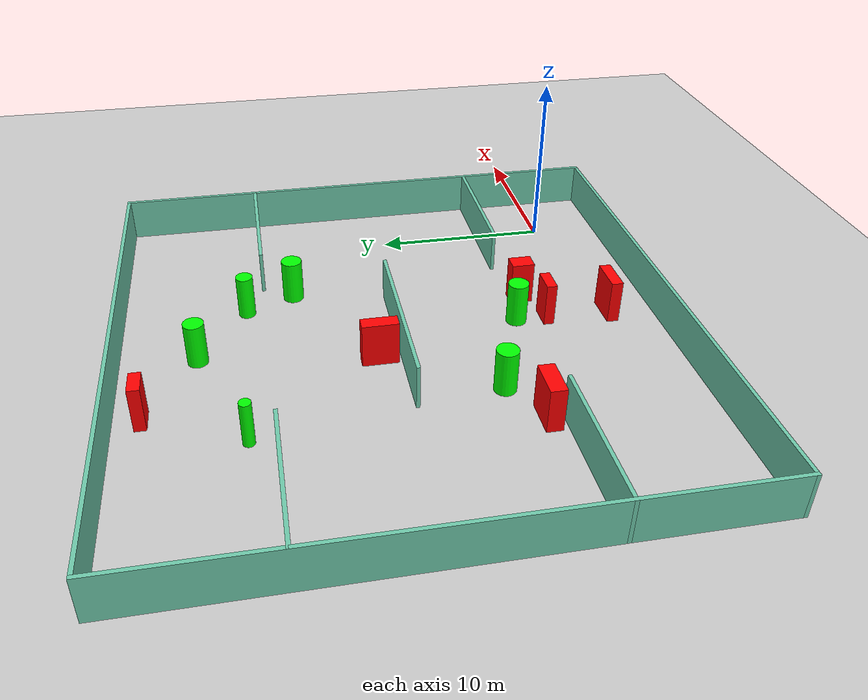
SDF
<sdf version="1.7">
 <world name="default">
  <light name="sun" type="directional">
   <pose>0 0 10 0 -0 0</pose>
   <diffuse>0.8 0.8 0.8 1</diffuse>
   <specular>0.2 0.2 0.2 1</specular>
   <attenuation>
    <range>1000</range>
    <constant>0.9</constant>
    <linear>0.01</linear>
    <quadratic>0.001</quadratic>
   </attenuation>
   <direction>-0.5 0.1 -0.9</direction>
   <spot><inner_angle>0</inner_angle><outer_angle>0</outer_angle><falloff>0</falloff></spot>
  </light>
  <model name="ground_plane">
   <static>1</static>
   <link name="link">
    <collision name="collision">
     <geometry><plane><normal>0 0 1</normal><size>100 100</size></plane></geometry>
     <surface>
      <contact><collide_bitmask>65535</collide_bitmask></contact>
      <friction><ode><mu>100</mu><mu2>50</mu2></ode></friction>
     </surface>
    </collision>
    <visual name="visual">
     <cast_shadows>0</cast_shadows>
     <geometry><plane><normal>0 0 1</normal><size>100 100</size></plane></geometry>
     <material>
      <script><uri>file://media/materials/scripts/gazebo.material</uri><name>Gazebo/Grey</name></script>
     </material>
    </visual>
   </link>
  </model>
  <gravity>0 0 -9.8</gravity>
  <magnetic_field>6e-06 2.3e-05 -4.2e-05</magnetic_field>
  <atmosphere type="adiabatic"/>
  <physics type="ode">
   <max_step_size>0.001</max_step_size>
   <real_time_factor>1</real_time_factor>
   <real_time_update_rate>1000</real_time_update_rate>
  </physics>
  <scene><ambient>0.4 0.4 0.4 1</ambient><background>0.7 0.7 0.7 1</background><shadows>1</shadows></scene>
  <spherical_coordinates>
   <surface_model>EARTH_WGS84</surface_model>
   <latitude_deg>0</latitude_deg>
   <longitude_deg>0</longitude_deg>
   <elevation>0</elevation>
   <heading_deg>0</heading_deg>
  </spherical_coordinates>
  <model name="my_base_walls">
   <link name="Wall_10">
    <collision name="Wall_10_Collision">
     <geometry><box><size>8.2 0.2 2.5</size></box></geometry>
     <pose>0 0 1.25 0 -0 0</pose>
    </collision>
    <visual name="Wall_10_Visual">
     <pose>0 0 1.25 0 -0 0</pose>
     <geometry><box><size>8.2 0.2 2.5</size></box></geometry>
     <material>
      <script><uri>file://media/materials/scripts/gazebo.material</uri><name>Gazebo/Grey</name></script>
      <ambient>0.435294 0.796078 0.67451 1</ambient>
     </material>
     <meta><layer>0</layer></meta>
    </visual>
    <pose>-11 -7 0 0 -0 0</pose>
   </link>
   <link name="Wall_12">
    <collision name="Wall_12_Collision">
     <geometry><box><size>8.2 0.2 2.5</size></box></geometry>
     <pose>0 0 1.25 0 -0 0</pose>
    </collision>
    <visual name="Wall_12_Visual">
     <pose>0 0 1.25 0 -0 0</pose>
     <geometry><box><size>8.2 0.2 2.5</size></box></geometry>
     <material>
      <script><uri>file://media/materials/scripts/gazebo.material</uri><name>Gazebo/Grey</name></script>
      <ambient>0.435294 0.796078 0.67451 1</ambient>
     </material>
     <meta><layer>0</layer></meta>
    </visual>
    <pose>-11 7 0 0 -0 0</pose>
   </link>
   <link name="Wall_14">
    <collision name="Wall_14_Collision">
     <geometry><box><size>8.2 0.2 2.5</size></box></geometry>
     <pose>0 0 1.25 0 -0 0</pose>
    </collision>
    <visual name="Wall_14_Visual">
     <pose>0 0 1.25 0 -0 0</pose>
     <geometry><box><size>8.2 0.2 2.5</size></box></geometry>
     <material>
      <script><uri>file://media/materials/scripts/gazebo.material</uri><name>Gazebo/Grey</name></script>
      <ambient>0.435294 0.796078 0.67451 1</ambient>
     </material>
     <meta><layer>0</layer></meta>
    </visual>
    <pose>11 7 0 0 -0 3.14159</pose>
   </link>
   <link name="Wall_16">
    <collision name="Wall_16_Collision">
     <geometry><box><size>10.2 0.2 2.5</size></box></geometry>
     <pose>0 0 1.25 0 -0 0</pose>
    </collision>
    <visual name="Wall_16_Visual">
     <pose>0 0 1.25 0 -0 0</pose>
     <geometry><box><size>10.2 0.2 2.5</size></box></geometry>
     <material>
      <script><uri>file://media/materials/scripts/gazebo.material</uri><name>Gazebo/Grey</name></script>
      <ambient>0.435294 0.796078 0.67451 1</ambient>
     </material>
     <meta><layer>0</layer></meta>
    </visual>
    <pose>0 0 0 0 -0 3.14159</pose>
   </link>
   <link name="Wall_2">
    <collision name="Wall_2_Collision">
     <geometry><box><size>30.2 0.2 2.5</size></box></geometry>
     <pose>0 0 1.25 0 -0 0</pose>
    </collision>
    <visual name="Wall_2_Visual">
     <pose>0 0 1.25 0 -0 0</pose>
     <geometry><box><size>30.2 0.2 2.5</size></box></geometry>
     <material>
      <script><uri>file://media/materials/scripts/gazebo.material</uri><name>Gazebo/Grey</name></script>
      <ambient>0.435294 0.796078 0.67451 1</ambient>
     </material>
     <meta><layer>0</layer></meta>
    </visual>
    <pose>0 -15 0 0 -0 3.14159</pose>
   </link>
   <link name="Wall_3">
    <collision name="Wall_3_Collision">
     <geometry><box><size>30.2 0.2 2.5</size></box></geometry>
     <pose>0 0 1.25 0 -0 0</pose>
    </collision>
    <visual name="Wall_3_Visual">
     <pose>0 0 1.25 0 -0 0</pose>
     <geometry><box><size>30.2 0.2 2.5</size></box></geometry>
     <material>
      <script><uri>file://media/materials/scripts/gazebo.material</uri><name>Gazebo/Grey</name></script>
      <ambient>0.435294 0.796078 0.67451 1</ambient>
     </material>
     <meta><layer>0</layer></meta>
    </visual>
    <pose>-15 0 0 0 -0 1.5708</pose>
   </link>
   <link name="Wall_4">
    <collision name="Wall_4_Collision">
     <geometry><box><size>30.2 0.2 2.5</size></box></geometry>
     <pose>0 0 1.25 0 -0 0</pose>
    </collision>
    <visual name="Wall_4_Visual">
     <pose>0 0 1.25 0 -0 0</pose>
     <geometry><box><size>30.2 0.2 2.5</size></box></geometry>
     <material>
      <script><uri>file://media/materials/scripts/gazebo.material</uri><name>Gazebo/Grey</name></script>
      <ambient>0.435294 0.796078 0.67451 1</ambient>
     </material>
     <meta><layer>0</layer></meta>
    </visual>
    <pose>0 15 0 0 -0 0</pose>
   </link>
   <link name="Wall_6">
    <collision name="Wall_6_Collision">
     <geometry><box><size>30.2 0.2 2.5</size></box></geometry>
     <pose>0 0 1.25 0 -0 0</pose>
    </collision>
    <visual name="Wall_6_Visual">
     <pose>0 0 1.25 0 -0 0</pose>
     <geometry><box><size>30.2 0.2 2.5</size></box></geometry>
     <material>
      <script><uri>file://media/materials/scripts/gazebo.material</uri><name>Gazebo/Grey</name></script>
      <ambient>0.435294 0.796078 0.67451 1</ambient>
     </material>
     <meta><layer>0</layer></meta>
    </visual>
    <pose>15 0 0 0 -0 1.5708</pose>
   </link>
   <link name="Wall_8">
    <collision name="Wall_8_Collision">
     <geometry><box><size>8.2 0.2 2.5</size></box></geometry>
     <pose>0 0 1.25 0 -0 0</pose>
    </collision>
    <visual name="Wall_8_Visual">
     <pose>0 0 1.25 0 -0 0</pose>
     <geometry><box><size>8.2 0.2 2.5</size></box></geometry>
     <material>
      <script><uri>file://media/materials/scripts/gazebo.material</uri><name>Gazebo/Grey</name></script>
      <ambient>0.435294 0.796078 0.67451 1</ambient>
     </material>
     <meta><layer>0</layer></meta>
    </visual>
    <pose>11 -7 0 0 -0 3.14159</pose>
   </link>
   <static>1</static>
   <pose>-11 11 0 0 -0 0</pose>
  </model>
  <model name="cylinder1">
   <static>1</static>
   <link name="link">
    <inertial>
     <mass>1</mass>
     <inertia><ixx>0.5</ixx><ixy>0</ixy><ixz>0</ixz><iyy>0.5</iyy><iyz>0</iyz><izz>1</izz></inertia>
    </inertial>
    <collision name="collision">
     <geometry><cylinder><radius>0.6009750246488441</radius><length>2.5</length></cylinder></geometry>
    </collision>
    <visual name="visual">
     <geometry><cylinder><radius>0.6009750246488441</radius><length>2.5</length></cylinder></geometry>
     <material>
      <ambient>0 1 0 1</ambient>
      <diffuse>0 1 0 1</diffuse>
      <specular>0.1 0.1 0.1 1</specular>
      <emissive>0 0 0 0</emissive>
     </material>
    </visual>
   </link>
   <pose>-15.459343621425566 6.352501210444835 1.25 0 0 0</pose>
  </model>
  <model name="cylinder2">
   <static>1</static>
   <link name="link">
    <inertial>
     <mass>1</mass>
     <inertia><ixx>0.5</ixx><ixy>0</ixy><ixz>0</ixz><iyy>0.5</iyy><iyz>0</iyz><izz>1</izz></inertia>
    </inertial>
    <collision name="collision">
     <geometry><cylinder><radius>0.5765405286644669</radius><length>2.5</length></cylinder></geometry>
    </collision>
    <visual name="visual">
     <geometry><cylinder><radius>0.5765405286644669</radius><length>2.5</length></cylinder></geometry>
     <material>
      <ambient>0 1 0 1</ambient>
      <diffuse>0 1 0 1</diffuse>
      <specular>0.1 0.1 0.1 1</specular>
      <emissive>0 0 0 0</emissive>
     </material>
    </visual>
   </link>
   <pose>-9.666057060085649 4.088240492462338 1.25 0 0 0</pose>
  </model>
  <model name="cylinder3">
   <static>1</static>
   <link name="link">
    <inertial>
     <mass>1</mass>
     <inertia><ixx>0.5</ixx><ixy>0</ixy><ixz>0</ixz><iyy>0.5</iyy><iyz>0</iyz><izz>1</izz></inertia>
    </inertial>
    <collision name="collision">
     <geometry><cylinder><radius>0.4733371751425111</radius><length>2.5</length></cylinder></geometry>
    </collision>
    <visual name="visual">
     <geometry><cylinder><radius>0.4733371751425111</radius><length>2.5</length></cylinder></geometry>
     <material>
      <ambient>0 1 0 1</ambient>
      <diffuse>0 1 0 1</diffuse>
      <specular>0.1 0.1 0.1 1</specular>
      <emissive>0 0 0 0</emissive>
     </material>
    </visual>
   </link>
   <pose>-6.33294412821356 19.047187073978037 1.25 0 0 0</pose>
  </model>
  <model name="cylinder4">
   <static>1</static>
   <link name="link">
    <inertial>
     <mass>1</mass>
     <inertia><ixx>0.5</ixx><ixy>0</ixy><ixz>0</ixz><iyy>0.5</iyy><iyz>0</iyz><izz>1</izz></inertia>
    </inertial>
    <collision name="collision">
     <geometry><cylinder><radius>0.3114814045926801</radius><length>2.5</length></cylinder></geometry>
    </collision>
    <visual name="visual">
     <geometry><cylinder><radius>0.3114814045926801</radius><length>2.5</length></cylinder></geometry>
     <material>
      <ambient>0 1 0 1</ambient>
      <diffuse>0 1 0 1</diffuse>
      <specular>0.1 0.1 0.1 1</specular>
      <emissive>0 0 0 0</emissive>
     </material>
    </visual>
   </link>
   <pose>-17.207291701017063 19.361153033576738 1.25 0 0 0</pose>
  </model>
  <model name="cylinder5">
   <static>1</static>
   <link name="link">
    <inertial>
     <mass>1</mass>
     <inertia><ixx>0.5</ixx><ixy>0</ixy><ixz>0</ixz><iyy>0.5</iyy><iyz>0</iyz><izz>1</izz></inertia>
    </inertial>
    <collision name="collision">
     <geometry><cylinder><radius>0.5849132930438687</radius><length>2.5</length></cylinder></geometry>
    </collision>
    <visual name="visual">
     <geometry><cylinder><radius>0.5849132930438687</radius><length>2.5</length></cylinder></geometry>
     <material>
      <ambient>0 1 0 1</ambient>
      <diffuse>0 1 0 1</diffuse>
      <specular>0.1 0.1 0.1 1</specular>
      <emissive>0 0 0 0</emissive>
     </material>
    </visual>
   </link>
   <pose>-5.082117073656825 16.306672955906706 1.25 0 0 0</pose>
  </model>
  <model name="cylinder6">
   <static>1</static>
   <link name="link">
    <inertial>
     <mass>1</mass>
     <inertia><ixx>0.5</ixx><ixy>0</ixy><ixz>0</ixz><iyy>0.5</iyy><iyz>0</iyz><izz>1</izz></inertia>
    </inertial>
    <collision name="collision">
     <geometry><cylinder><radius>0.5567739665648384</radius><length>2.5</length></cylinder></geometry>
    </collision>
    <visual name="visual">
     <geometry><cylinder><radius>0.5567739665648384</radius><length>2.5</length></cylinder></geometry>
     <material>
      <ambient>0 1 0 1</ambient>
      <diffuse>0 1 0 1</diffuse>
      <specular>0.1 0.1 0.1 1</specular>
      <emissive>0 0 0 0</emissive>
     </material>
    </visual>
   </link>
   <pose>-10.405148836890593 21.79205641429278 1.25 0 0 0</pose>
  </model>
  <model name="box1">
   <static>1</static>
   <link name="link">
    <inertial>
     <mass>1</mass>
     <inertia><ixx>0.083</ixx><ixy>0</ixy><ixz>0</ixz><iyy>0.083</iyy><iyz>0</iyz><izz>0.083</izz></inertia>
    </inertial>
    <collision name="collision">
     <geometry><box><size>0.9515664094571727 1.2800136979835164 2.5</size></box></geometry>
    </collision>
    <visual name="visual">
     <geometry><box><size>0.9515664094571727 1.2800136979835164 2.5</size></box></geometry>
     <material>
      <ambient>1 0 0 1</ambient>
      <diffuse>1 0 0 1</diffuse>
      <specular>0.1 0.1 0.1 1</specular>
      <emissive>0 0 0 0</emissive>
     </material>
    </visual>
    <sensor name="my_contact" type="contact">
     <contact><collision>box_collision</collision><topic>__default_topic__</topic></contact>
    </sensor>
   </link>
   <pose>-7.45073425551638 3.2769422494848293 1.25 0 0 0</pose>
  </model>
  <model name="box2">
   <static>1</static>
   <link name="link">
    <inertial>
     <mass>1</mass>
     <inertia><ixx>0.083</ixx><ixy>0</ixy><ixz>0</ixz><iyy>0.083</iyy><iyz>0</iyz><izz>0.083</izz></inertia>
    </inertial>
    <collision name="collision">
     <geometry><box><size>2.068829265538069 0.8778474598168378 2.5</size></box></geometry>
    </collision>
    <visual name="visual">
     <geometry><box><size>2.068829265538069 0.8778474598168378 2.5</size></box></geometry>
     <material>
      <ambient>1 0 0 1</ambient>
      <diffuse>1 0 0 1</diffuse>
      <specular>0.1 0.1 0.1 1</specular>
      <emissive>0 0 0 0</emissive>
     </material>
    </visual>
    <sensor name="my_contact" type="contact">
     <contact><collision>box_collision</collision><topic>__default_topic__</topic></contact>
    </sensor>
   </link>
   <pose>-17.94934927608152 4.863723024032266 1.25 0 0 0</pose>
  </model>
  <model name="box3">
   <static>1</static>
   <link name="link">
    <inertial>
     <mass>1</mass>
     <inertia><ixx>0.083</ixx><ixy>0</ixy><ixz>0</ixz><iyy>0.083</iyy><iyz>0</iyz><izz>0.083</izz></inertia>
    </inertial>
    <collision name="collision">
     <geometry><box><size>1.4399200156740268 0.5831407112871495 2.5</size></box></geometry>
    </collision>
    <visual name="visual">
     <geometry><box><size>1.4399200156740268 0.5831407112871495 2.5</size></box></geometry>
     <material>
      <ambient>1 0 0 1</ambient>
      <diffuse>1 0 0 1</diffuse>
      <specular>0.1 0.1 0.1 1</specular>
      <emissive>0 0 0 0</emissive>
     </material>
    </visual>
    <sensor name="my_contact" type="contact">
     <contact><collision>box_collision</collision><topic>__default_topic__</topic></contact>
    </sensor>
   </link>
   <pose>-9.617196965396342 2.3671369731342375 1.25 0 0 0</pose>
  </model>
  <model name="box4">
   <static>1</static>
   <link name="link">
    <inertial>
     <mass>1</mass>
     <inertia><ixx>0.083</ixx><ixy>0</ixy><ixz>0</ixz><iyy>0.083</iyy><iyz>0</iyz><izz>0.083</izz></inertia>
    </inertial>
    <collision name="collision">
     <geometry><box><size>1.3995915637325673 0.6245328284499223 2.5</size></box></geometry>
    </collision>
    <visual name="visual">
     <geometry><box><size>1.3995915637325673 0.6245328284499223 2.5</size></box></geometry>
     <material>
      <ambient>1 0 0 1</ambient>
      <diffuse>1 0 0 1</diffuse>
      <specular>0.1 0.1 0.1 1</specular>
      <emissive>0 0 0 0</emissive>
     </material>
    </visual>
    <sensor name="my_contact" type="contact">
     <contact><collision>box_collision</collision><topic>__default_topic__</topic></contact>
    </sensor>
   </link>
   <pose>-14.759938349295208 24.482222469549868 1.25 0 0 0</pose>
  </model>
  <model name="box5">
   <static>1</static>
   <link name="link">
    <inertial>
     <mass>1</mass>
     <inertia><ixx>0.083</ixx><ixy>0</ixy><ixz>0</ixz><iyy>0.083</iyy><iyz>0</iyz><izz>0.083</izz></inertia>
    </inertial>
    <collision name="collision">
     <geometry><box><size>0.7725153494973573 1.9889375515392262 2.5</size></box></geometry>
    </collision>
    <visual name="visual">
     <geometry><box><size>0.7725153494973573 1.9889375515392262 2.5</size></box></geometry>
     <material>
      <ambient>1 0 0 1</ambient>
      <diffuse>1 0 0 1</diffuse>
      <specular>0.1 0.1 0.1 1</specular>
      <emissive>0 0 0 0</emissive>
     </material>
    </visual>
    <sensor name="my_contact" type="contact">
     <contact><collision>box_collision</collision><topic>__default_topic__</topic></contact>
    </sensor>
   </link>
   <pose>-11.949011598209172 12.256400621019024 1.25 0 0 0</pose>
  </model>
  <model name="box6">
   <static>1</static>
   <link name="link">
    <inertial>
     <mass>1</mass>
     <inertia><ixx>0.083</ixx><ixy>0</ixy><ixz>0</ixz><iyy>0.083</iyy><iyz>0</iyz><izz>0.083</izz></inertia>
    </inertial>
    <collision name="collision">
     <geometry><box><size>2.012658971893246 0.6559114969770532 2.5</size></box></geometry>
    </collision>
    <visual name="visual">
     <geometry><box><size>2.012658971893246 0.6559114969770532 2.5</size></box></geometry>
     <material>
      <ambient>1 0 0 1</ambient>
      <diffuse>1 0 0 1</diffuse>
      <specular>0.1 0.1 0.1 1</specular>
      <emissive>0 0 0 0</emissive>
     </material>
    </visual>
    <sensor name="my_contact" type="contact">
     <contact><collision>box_collision</collision><topic>__default_topic__</topic></contact>
    </sensor>
   </link>
   <pose>-9.695162458630014 -1.2816356419317518 1.25 0 0 0</pose>
  </model>
 </world>
</sdf>
